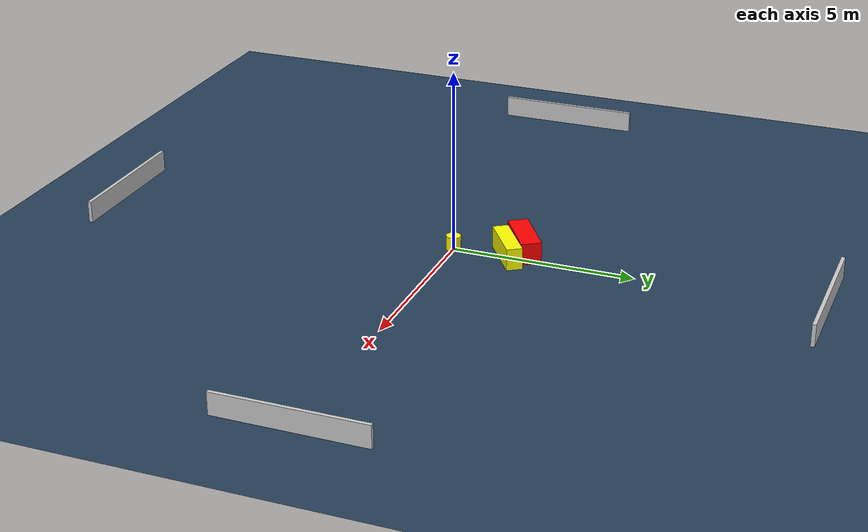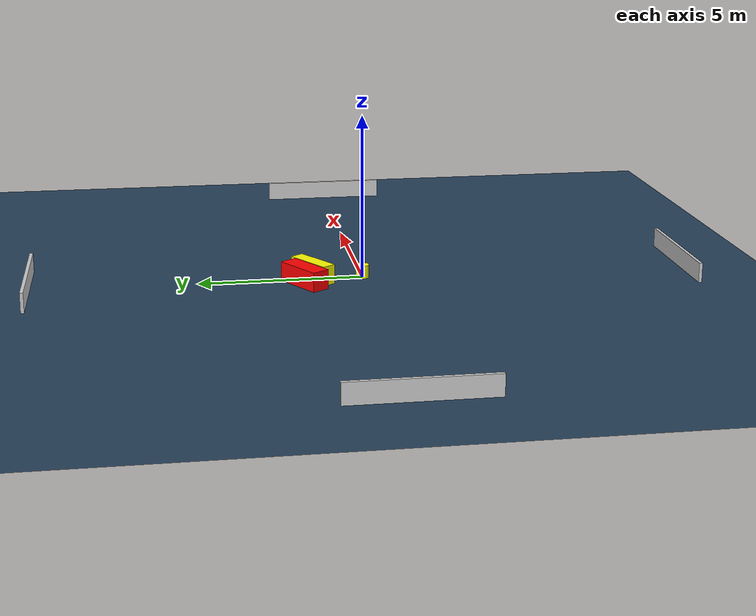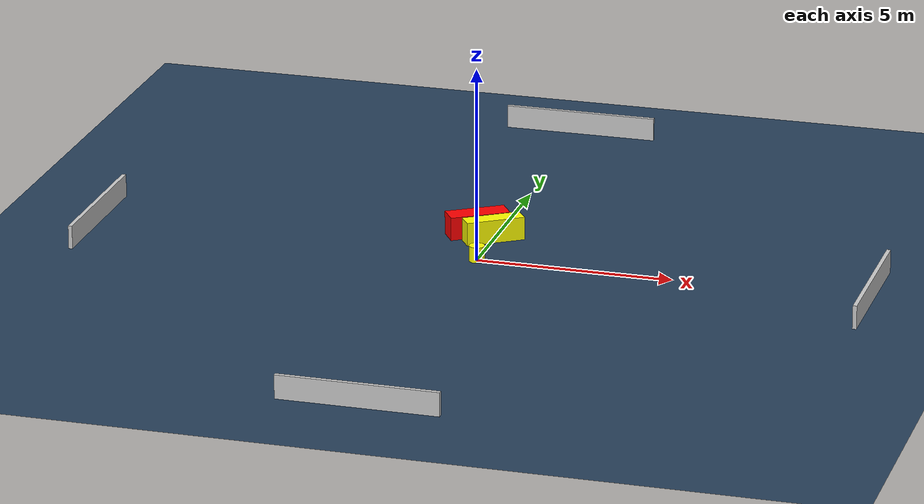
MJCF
<?xml version="1.0" ?>
<mujoco model="generated_environment">
  <option timestep="0.01" integrator="RK4" cone="elliptic"/>
  <default>
    <geom density="1"/>
  </default>
  <asset>
    <texture builtin="gradient" height="3072" name="skybox" rgb1="0.3 0.5 0.7" rgb2="0 0 0" type="skybox" width="512"/>
    <texture builtin="checker" height="300" name="groundplane" rgb1="0.2 0.3 0.4" rgb2="0.1 0.2 0.3" type="2d" width="300"/>
    <material name="groundplane" reflectance="0.2" texrepeat="5 5" texture="groundplane"/>
  </asset>
  <worldbody>
    <light dir="0 0 -1" directional="true" pos="0 0 1.5"/>
    <geom condim="3" friction="0.5 0.005 0.001" material="groundplane" name="floor" pos="0 0 0" size="0 0 0.05" type="plane"/>
    <body name="walls">
      <geom name="wall_1" condim="4" pos="-10.0 0.0 0.3" rgba="0.800000011920929 0.800000011920929 0.800000011920929 1.0" size="0.05 2.0 0.3" type="box"/>
      <geom name="wall_2" condim="4" pos="10.0 0.0 0.3" rgba="0.800000011920929 0.800000011920929 0.800000011920929 1.0" size="0.05 2.0 0.3" type="box"/>
      <geom name="wall_3" condim="4" pos="0.0 -10.0 0.3" rgba="0.800000011920929 0.800000011920929 0.800000011920929 1.0" size="2.0 0.05 0.3" type="box"/>
      <geom name="wall_4" condim="4" pos="0.0 10.0 0.3" rgba="0.800000011920929 0.800000011920929 0.800000011920929 1.0" size="2.0 0.05 0.3" type="box"/>
    </body>
    <body name="robot">
      <joint name="joint_x" type="slide" pos="0 0 0" axis="1 0 0"/>
      <joint name="joint_y" type="slide" pos="0 0 0" axis="0 1 0"/>
      <geom name="robot" type="cylinder" pos="0.0 0.0 0.2" size="0.2 0.2 0.0" mass="5.0" friction="1.0 0.005 0.0001" condim="4" rgba="1.0 1.0 0.0 1.0"/>
    </body>
    <body name="obstacle_1_movable">
      <geom name="obstacle_1_movable" condim="4" pos="-0.007900580188693163 1.5192614816928165 0.3" euler="0 0 33.97769627263871" friction="0.0 0.005 0.001" rgba="1.0 1.0 0.0 1.0" size="0.7560466550314964 0.21581328600023053 0.3" type="box" mass="0.1"/>
      <joint type="free"/>
    </body>
    <body name="obstacle_2_static">
      <geom name="obstacle_2_static" condim="4" pos="-0.5088235419709137 1.825093268883863 0.3" euler="0 0 302.5804669401496" friction="0.0 0.005 0.001" rgba="1.0 0.0 0.0 1.0" size="0.2784448605623201 0.7753306425309698 0.3" type="box"/>
    </body>
  </worldbody>
  <actuator>
    <motor name="actuator_x" joint="joint_x" gear="1" ctrlrange="-1 1"/>
    <motor name="actuator_y" joint="joint_y" gear="1" ctrlrange="-1 1"/>
  </actuator>
</mujoco>
